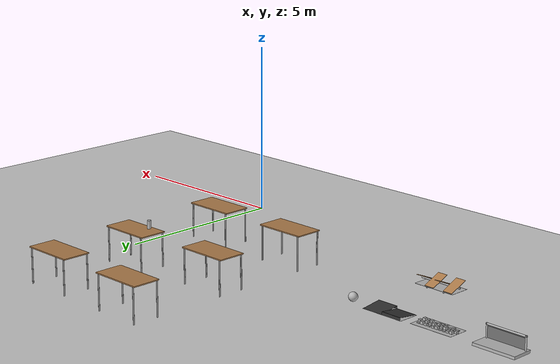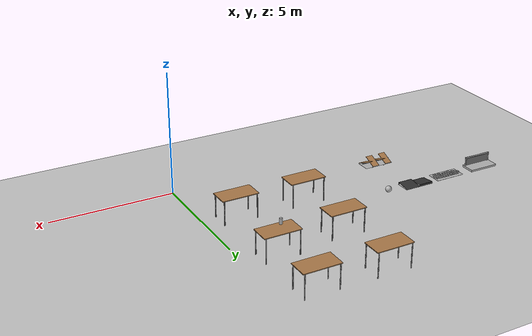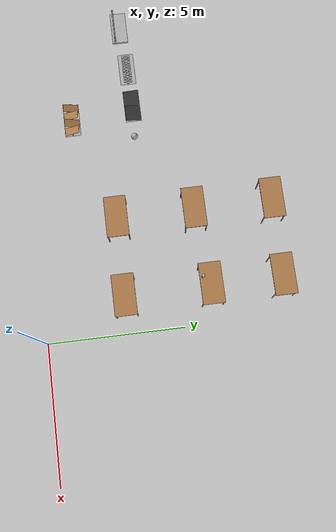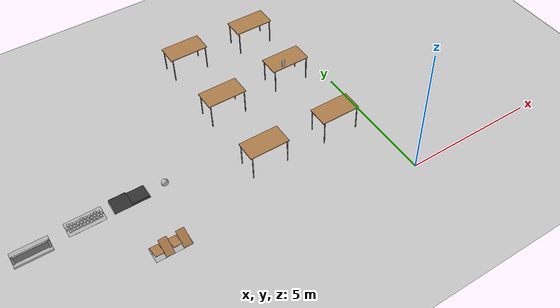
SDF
<sdf version="1.6">
 <world name="default">
  <model name="ground_plane">
   <static>1</static>
   <link name="link">
    <collision name="collision">
     <geometry><plane><normal>0 0 1</normal><size>100 100</size></plane></geometry>
     <surface>
      <contact><collide_bitmask>65535</collide_bitmask></contact>
      <friction><ode><mu>100</mu><mu2>50</mu2></ode></friction>
     </surface>
    </collision>
    <visual name="visual">
     <cast_shadows>0</cast_shadows>
     <geometry><plane><normal>0 0 1</normal><size>100 100</size></plane></geometry>
     <material>
      <script><uri>file://media/materials/scripts/gazebo.material</uri><name>Gazebo/Grey</name></script>
     </material>
    </visual>
   </link>
  </model>
  <model name="table_clone_0_clone_0_clone_clone_clone">
   <static>1</static>
   <link name="link">
    <collision name="surface">
     <pose>0 0 1 0 -0 0</pose>
     <geometry><box><size>1.5 0.8 0.03</size></box></geometry>
     <surface><friction><ode><mu>0.6</mu><mu2>0.6</mu2></ode></friction></surface>
    </collision>
    <visual name="visual1">
     <pose>0 0 1 0 -0 0</pose>
     <geometry><box><size>1.5 0.8 0.03</size></box></geometry>
     <material>
      <script><uri>file://media/materials/scripts/gazebo.material</uri><name>Gazebo/Wood</name></script>
     </material>
    </visual>
    <collision name="front_left_leg">
     <pose>0.68 0.38 0.5 0 -0 0</pose>
     <geometry><cylinder><radius>0.02</radius><length>1</length></cylinder></geometry>
    </collision>
    <visual name="front_left_leg">
     <pose>0.68 0.38 0.5 0 -0 0</pose>
     <geometry><cylinder><radius>0.02</radius><length>1</length></cylinder></geometry>
     <material>
      <script><uri>file://media/materials/scripts/gazebo.material</uri><name>Gazebo/Grey</name></script>
     </material>
    </visual>
    <collision name="front_right_leg">
     <pose>0.68 -0.38 0.5 0 -0 0</pose>
     <geometry><cylinder><radius>0.02</radius><length>1</length></cylinder></geometry>
    </collision>
    <visual name="front_right_leg">
     <pose>0.68 -0.38 0.5 0 -0 0</pose>
     <geometry><cylinder><radius>0.02</radius><length>1</length></cylinder></geometry>
     <material>
      <script><uri>file://media/materials/scripts/gazebo.material</uri><name>Gazebo/Grey</name></script>
     </material>
    </visual>
    <collision name="back_right_leg">
     <pose>-0.68 -0.38 0.5 0 -0 0</pose>
     <geometry><cylinder><radius>0.02</radius><length>1</length></cylinder></geometry>
    </collision>
    <visual name="back_right_leg">
     <pose>-0.68 -0.38 0.5 0 -0 0</pose>
     <geometry><cylinder><radius>0.02</radius><length>1</length></cylinder></geometry>
     <material>
      <script><uri>file://media/materials/scripts/gazebo.material</uri><name>Gazebo/Grey</name></script>
     </material>
    </visual>
    <collision name="back_left_leg">
     <pose>-0.68 0.38 0.5 0 -0 0</pose>
     <geometry><cylinder><radius>0.02</radius><length>1</length></cylinder></geometry>
    </collision>
    <visual name="back_left_leg">
     <pose>-0.68 0.38 0.5 0 -0 0</pose>
     <geometry><cylinder><radius>0.02</radius><length>1</length></cylinder></geometry>
     <material>
      <script><uri>file://media/materials/scripts/gazebo.material</uri><name>Gazebo/Grey</name></script>
     </material>
    </visual>
   </link>
   <pose>-4.19448 8.69629 0 0 -0 0</pose>
  </model>
  <model name="table_clone_0_clone_0_clone_clone_clone_clone">
   <static>1</static>
   <link name="link">
    <collision name="surface">
     <pose>0 0 1 0 -0 0</pose>
     <geometry><box><size>1.5 0.8 0.03</size></box></geometry>
     <surface><friction><ode><mu>0.6</mu><mu2>0.6</mu2></ode></friction></surface>
    </collision>
    <visual name="visual1">
     <pose>0 0 1 0 -0 0</pose>
     <geometry><box><size>1.5 0.8 0.03</size></box></geometry>
     <material>
      <script><uri>file://media/materials/scripts/gazebo.material</uri><name>Gazebo/Wood</name></script>
     </material>
    </visual>
    <collision name="front_left_leg">
     <pose>0.68 0.38 0.5 0 -0 0</pose>
     <geometry><cylinder><radius>0.02</radius><length>1</length></cylinder></geometry>
    </collision>
    <visual name="front_left_leg">
     <pose>0.68 0.38 0.5 0 -0 0</pose>
     <geometry><cylinder><radius>0.02</radius><length>1</length></cylinder></geometry>
     <material>
      <script><uri>file://media/materials/scripts/gazebo.material</uri><name>Gazebo/Grey</name></script>
     </material>
    </visual>
    <collision name="front_right_leg">
     <pose>0.68 -0.38 0.5 0 -0 0</pose>
     <geometry><cylinder><radius>0.02</radius><length>1</length></cylinder></geometry>
    </collision>
    <visual name="front_right_leg">
     <pose>0.68 -0.38 0.5 0 -0 0</pose>
     <geometry><cylinder><radius>0.02</radius><length>1</length></cylinder></geometry>
     <material>
      <script><uri>file://media/materials/scripts/gazebo.material</uri><name>Gazebo/Grey</name></script>
     </material>
    </visual>
    <collision name="back_right_leg">
     <pose>-0.68 -0.38 0.5 0 -0 0</pose>
     <geometry><cylinder><radius>0.02</radius><length>1</length></cylinder></geometry>
    </collision>
    <visual name="back_right_leg">
     <pose>-0.68 -0.38 0.5 0 -0 0</pose>
     <geometry><cylinder><radius>0.02</radius><length>1</length></cylinder></geometry>
     <material>
      <script><uri>file://media/materials/scripts/gazebo.material</uri><name>Gazebo/Grey</name></script>
     </material>
    </visual>
    <collision name="back_left_leg">
     <pose>-0.68 0.38 0.5 0 -0 0</pose>
     <geometry><cylinder><radius>0.02</radius><length>1</length></cylinder></geometry>
    </collision>
    <visual name="back_left_leg">
     <pose>-0.68 0.38 0.5 0 -0 0</pose>
     <geometry><cylinder><radius>0.02</radius><length>1</length></cylinder></geometry>
     <material>
      <script><uri>file://media/materials/scripts/gazebo.material</uri><name>Gazebo/Grey</name></script>
     </material>
    </visual>
   </link>
   <pose>-4.18086 5.82665 0 0 -0 0</pose>
  </model>
  <model name="table_clone_0_clone_0_clone_clone_clone_clone_clone">
   <static>1</static>
   <link name="link">
    <collision name="surface">
     <pose>0 0 1 0 -0 0</pose>
     <geometry><box><size>1.5 0.8 0.03</size></box></geometry>
     <surface><friction><ode><mu>0.6</mu><mu2>0.6</mu2></ode></friction></surface>
    </collision>
    <visual name="visual1">
     <pose>0 0 1 0 -0 0</pose>
     <geometry><box><size>1.5 0.8 0.03</size></box></geometry>
     <material>
      <script><uri>file://media/materials/scripts/gazebo.material</uri><name>Gazebo/Wood</name></script>
     </material>
    </visual>
    <collision name="front_left_leg">
     <pose>0.68 0.38 0.5 0 -0 0</pose>
     <geometry><cylinder><radius>0.02</radius><length>1</length></cylinder></geometry>
    </collision>
    <visual name="front_left_leg">
     <pose>0.68 0.38 0.5 0 -0 0</pose>
     <geometry><cylinder><radius>0.02</radius><length>1</length></cylinder></geometry>
     <material>
      <script><uri>file://media/materials/scripts/gazebo.material</uri><name>Gazebo/Grey</name></script>
     </material>
    </visual>
    <collision name="front_right_leg">
     <pose>0.68 -0.38 0.5 0 -0 0</pose>
     <geometry><cylinder><radius>0.02</radius><length>1</length></cylinder></geometry>
    </collision>
    <visual name="front_right_leg">
     <pose>0.68 -0.38 0.5 0 -0 0</pose>
     <geometry><cylinder><radius>0.02</radius><length>1</length></cylinder></geometry>
     <material>
      <script><uri>file://media/materials/scripts/gazebo.material</uri><name>Gazebo/Grey</name></script>
     </material>
    </visual>
    <collision name="back_right_leg">
     <pose>-0.68 -0.38 0.5 0 -0 0</pose>
     <geometry><cylinder><radius>0.02</radius><length>1</length></cylinder></geometry>
    </collision>
    <visual name="back_right_leg">
     <pose>-0.68 -0.38 0.5 0 -0 0</pose>
     <geometry><cylinder><radius>0.02</radius><length>1</length></cylinder></geometry>
     <material>
      <script><uri>file://media/materials/scripts/gazebo.material</uri><name>Gazebo/Grey</name></script>
     </material>
    </visual>
    <collision name="back_left_leg">
     <pose>-0.68 0.38 0.5 0 -0 0</pose>
     <geometry><cylinder><radius>0.02</radius><length>1</length></cylinder></geometry>
    </collision>
    <visual name="back_left_leg">
     <pose>-0.68 0.38 0.5 0 -0 0</pose>
     <geometry><cylinder><radius>0.02</radius><length>1</length></cylinder></geometry>
     <material>
      <script><uri>file://media/materials/scripts/gazebo.material</uri><name>Gazebo/Grey</name></script>
     </material>
    </visual>
   </link>
   <pose>-4.184 2.99357 0 0 -0 0</pose>
  </model>
  <model name="table_clone_0_clone_0_clone_clone_clone_clone_clone_3">
   <static>1</static>
   <link name="link">
    <collision name="surface">
     <pose>0 0 1 0 -0 0</pose>
     <geometry><box><size>1.5 0.8 0.03</size></box></geometry>
     <surface><friction><ode><mu>0.6</mu><mu2>0.6</mu2></ode></friction></surface>
    </collision>
    <visual name="visual1">
     <pose>0 0 1 0 -0 0</pose>
     <geometry><box><size>1.5 0.8 0.03</size></box></geometry>
     <material>
      <script><uri>file://media/materials/scripts/gazebo.material</uri><name>Gazebo/Wood</name></script>
     </material>
    </visual>
    <collision name="front_left_leg">
     <pose>0.68 0.38 0.5 0 -0 0</pose>
     <geometry><cylinder><radius>0.02</radius><length>1</length></cylinder></geometry>
    </collision>
    <visual name="front_left_leg">
     <pose>0.68 0.38 0.5 0 -0 0</pose>
     <geometry><cylinder><radius>0.02</radius><length>1</length></cylinder></geometry>
     <material>
      <script><uri>file://media/materials/scripts/gazebo.material</uri><name>Gazebo/Grey</name></script>
     </material>
    </visual>
    <collision name="front_right_leg">
     <pose>0.68 -0.38 0.5 0 -0 0</pose>
     <geometry><cylinder><radius>0.02</radius><length>1</length></cylinder></geometry>
    </collision>
    <visual name="front_right_leg">
     <pose>0.68 -0.38 0.5 0 -0 0</pose>
     <geometry><cylinder><radius>0.02</radius><length>1</length></cylinder></geometry>
     <material>
      <script><uri>file://media/materials/scripts/gazebo.material</uri><name>Gazebo/Grey</name></script>
     </material>
    </visual>
    <collision name="back_right_leg">
     <pose>-0.68 -0.38 0.5 0 -0 0</pose>
     <geometry><cylinder><radius>0.02</radius><length>1</length></cylinder></geometry>
    </collision>
    <visual name="back_right_leg">
     <pose>-0.68 -0.38 0.5 0 -0 0</pose>
     <geometry><cylinder><radius>0.02</radius><length>1</length></cylinder></geometry>
     <material>
      <script><uri>file://media/materials/scripts/gazebo.material</uri><name>Gazebo/Grey</name></script>
     </material>
    </visual>
    <collision name="back_left_leg">
     <pose>-0.68 0.38 0.5 0 -0 0</pose>
     <geometry><cylinder><radius>0.02</radius><length>1</length></cylinder></geometry>
    </collision>
    <visual name="back_left_leg">
     <pose>-0.68 0.38 0.5 0 -0 0</pose>
     <geometry><cylinder><radius>0.02</radius><length>1</length></cylinder></geometry>
     <material>
      <script><uri>file://media/materials/scripts/gazebo.material</uri><name>Gazebo/Grey</name></script>
     </material>
    </visual>
   </link>
   <pose>-1.34747 6.0871 0 0 -0 0</pose>
  </model>
  <model name="table_clone_0_clone_0_clone_clone_clone_clone_clone_3_clone">
   <static>1</static>
   <link name="link">
    <collision name="surface">
     <pose>0 0 1 0 -0 0</pose>
     <geometry><box><size>1.5 0.8 0.03</size></box></geometry>
     <surface><friction><ode><mu>0.6</mu><mu2>0.6</mu2></ode></friction></surface>
    </collision>
    <visual name="visual1">
     <pose>0 0 1 0 -0 0</pose>
     <geometry><box><size>1.5 0.8 0.03</size></box></geometry>
     <material>
      <script><uri>file://media/materials/scripts/gazebo.material</uri><name>Gazebo/Wood</name></script>
     </material>
    </visual>
    <collision name="front_left_leg">
     <pose>0.68 0.38 0.5 0 -0 0</pose>
     <geometry><cylinder><radius>0.02</radius><length>1</length></cylinder></geometry>
    </collision>
    <visual name="front_left_leg">
     <pose>0.68 0.38 0.5 0 -0 0</pose>
     <geometry><cylinder><radius>0.02</radius><length>1</length></cylinder></geometry>
     <material>
      <script><uri>file://media/materials/scripts/gazebo.material</uri><name>Gazebo/Grey</name></script>
     </material>
    </visual>
    <collision name="front_right_leg">
     <pose>0.68 -0.38 0.5 0 -0 0</pose>
     <geometry><cylinder><radius>0.02</radius><length>1</length></cylinder></geometry>
    </collision>
    <visual name="front_right_leg">
     <pose>0.68 -0.38 0.5 0 -0 0</pose>
     <geometry><cylinder><radius>0.02</radius><length>1</length></cylinder></geometry>
     <material>
      <script><uri>file://media/materials/scripts/gazebo.material</uri><name>Gazebo/Grey</name></script>
     </material>
    </visual>
    <collision name="back_right_leg">
     <pose>-0.68 -0.38 0.5 0 -0 0</pose>
     <geometry><cylinder><radius>0.02</radius><length>1</length></cylinder></geometry>
    </collision>
    <visual name="back_right_leg">
     <pose>-0.68 -0.38 0.5 0 -0 0</pose>
     <geometry><cylinder><radius>0.02</radius><length>1</length></cylinder></geometry>
     <material>
      <script><uri>file://media/materials/scripts/gazebo.material</uri><name>Gazebo/Grey</name></script>
     </material>
    </visual>
    <collision name="back_left_leg">
     <pose>-0.68 0.38 0.5 0 -0 0</pose>
     <geometry><cylinder><radius>0.02</radius><length>1</length></cylinder></geometry>
    </collision>
    <visual name="back_left_leg">
     <pose>-0.68 0.38 0.5 0 -0 0</pose>
     <geometry><cylinder><radius>0.02</radius><length>1</length></cylinder></geometry>
     <material>
      <script><uri>file://media/materials/scripts/gazebo.material</uri><name>Gazebo/Grey</name></script>
     </material>
    </visual>
   </link>
   <pose>-1.35639 8.6653 0 0 -0 0</pose>
  </model>
  <model name="table_clone_0_clone_0_clone_clone_clone_clone_clone_3_clone_0">
   <static>1</static>
   <link name="link">
    <collision name="surface">
     <pose>0 0 1 0 -0 0</pose>
     <geometry><box><size>1.5 0.8 0.03</size></box></geometry>
     <surface><friction><ode><mu>0.6</mu><mu2>0.6</mu2></ode></friction></surface>
    </collision>
    <visual name="visual1">
     <pose>0 0 1 0 -0 0</pose>
     <geometry><box><size>1.5 0.8 0.03</size></box></geometry>
     <material>
      <script><uri>file://media/materials/scripts/gazebo.material</uri><name>Gazebo/Wood</name></script>
     </material>
    </visual>
    <collision name="front_left_leg">
     <pose>0.68 0.38 0.5 0 -0 0</pose>
     <geometry><cylinder><radius>0.02</radius><length>1</length></cylinder></geometry>
    </collision>
    <visual name="front_left_leg">
     <pose>0.68 0.38 0.5 0 -0 0</pose>
     <geometry><cylinder><radius>0.02</radius><length>1</length></cylinder></geometry>
     <material>
      <script><uri>file://media/materials/scripts/gazebo.material</uri><name>Gazebo/Grey</name></script>
     </material>
    </visual>
    <collision name="front_right_leg">
     <pose>0.68 -0.38 0.5 0 -0 0</pose>
     <geometry><cylinder><radius>0.02</radius><length>1</length></cylinder></geometry>
    </collision>
    <visual name="front_right_leg">
     <pose>0.68 -0.38 0.5 0 -0 0</pose>
     <geometry><cylinder><radius>0.02</radius><length>1</length></cylinder></geometry>
     <material>
      <script><uri>file://media/materials/scripts/gazebo.material</uri><name>Gazebo/Grey</name></script>
     </material>
    </visual>
    <collision name="back_right_leg">
     <pose>-0.68 -0.38 0.5 0 -0 0</pose>
     <geometry><cylinder><radius>0.02</radius><length>1</length></cylinder></geometry>
    </collision>
    <visual name="back_right_leg">
     <pose>-0.68 -0.38 0.5 0 -0 0</pose>
     <geometry><cylinder><radius>0.02</radius><length>1</length></cylinder></geometry>
     <material>
      <script><uri>file://media/materials/scripts/gazebo.material</uri><name>Gazebo/Grey</name></script>
     </material>
    </visual>
    <collision name="back_left_leg">
     <pose>-0.68 0.38 0.5 0 -0 0</pose>
     <geometry><cylinder><radius>0.02</radius><length>1</length></cylinder></geometry>
    </collision>
    <visual name="back_left_leg">
     <pose>-0.68 0.38 0.5 0 -0 0</pose>
     <geometry><cylinder><radius>0.02</radius><length>1</length></cylinder></geometry>
     <material>
      <script><uri>file://media/materials/scripts/gazebo.material</uri><name>Gazebo/Grey</name></script>
     </material>
    </visual>
   </link>
   <pose>-1.30838 2.9678 0 0 -0 0</pose>
  </model>
  <model name="beer_0">
   <link name="link">
    <pose>0 0 0.115 0 -0 0</pose>
    <inertial>
     <mass>0.39</mass>
     <inertia><ixx>0.00058</ixx><ixy>0</ixy><ixz>0</ixz><iyy>0.00058</iyy><iyz>0</iyz><izz>0.00019</izz></inertia>
    </inertial>
    <collision name="collision">
     <geometry><cylinder><radius>0.055</radius><length>0.23</length></cylinder></geometry>
    </collision>
    <visual name="visual">
     <geometry><cylinder><radius>0.055</radius><length>0.23</length></cylinder></geometry>
     <material>
      <script>
       <uri>model://beer/materials/scripts</uri>
       <uri>model://beer/materials/textures</uri>
       <name>Beer/Diffuse</name>
      </script>
     </material>
    </visual>
   </link>
   <pose>-1.60593 5.8146 1.01499 8e-06 4e-05 -4.1e-05</pose>
  </model>
  <model name="frc2016_ramparts">
   <static>1</static>
   <link name="link">
    <visual name="platform">
     <pose>0 0 0.06967 0 -0 0</pose>
     <geometry><box><size>1.27 0.5969 0.003175</size></box></geometry>
    </visual>
    <collision name="platform">
     <pose>0 0 0.06967 0 -0 0</pose>
     <geometry><box><size>1.27 0.5969 0.003175</size></box></geometry>
    </collision>
    <visual name="ramp1">
     <pose>0.30472 0.00588 0.1109 -0.13 0 0</pose>
     <geometry><box><size>0.60957 0.588891 0.00462</size></box></geometry>
     <material><ambient>0.2 0.2 0.2 1</ambient><diffuse>0.2 0.2 0.2 1</diffuse></material>
    </visual>
    <collision name="ramp1">
     <pose>0.30472 0.00588 0.1109 -0.13 0 0</pose>
     <geometry><box><size>0.60957 0.588891 0.00462</size></box></geometry>
    </collision>
    <visual name="up1">
     <pose>0.30472 -0.28806 0.11072 0 -0 0</pose>
     <geometry><box><size>0.60957 0.00462 0.07872</size></box></geometry>
     <material><ambient>0.2 0.2 0.2 1</ambient><diffuse>0.2 0.2 0.2 1</diffuse></material>
    </visual>
    <collision name="up1">
     <pose>0.30472 -0.28806 0.11072 0 -0 0</pose>
     <geometry><box><size>0.60957 0.00462 0.07872</size></box></geometry>
    </collision>
    <visual name="ramp2">
     <pose>-0.30472 -0.00619 0.1109 0.13 -0 0</pose>
     <geometry><box><size>0.60957 0.588891 0.00462</size></box></geometry>
     <material><ambient>0.2 0.2 0.2 1</ambient><diffuse>0.2 0.2 0.2 1</diffuse></material>
    </visual>
    <collision name="ramp2">
     <pose>-0.30472 -0.00619 0.1109 0.13 -0 0</pose>
     <geometry><box><size>0.60957 0.588891 0.00462</size></box></geometry>
    </collision>
    <visual name="up2">
     <pose>-0.30472 0.28806 0.11072 0 -0 0</pose>
     <geometry><box><size>0.60957 0.00462 0.07872</size></box></geometry>
     <material><ambient>0.2 0.2 0.2 1</ambient><diffuse>0.2 0.2 0.2 1</diffuse></material>
    </visual>
    <collision name="up2">
     <pose>-0.30472 0.28806 0.11072 0 -0 0</pose>
     <geometry><box><size>0.60957 0.00462 0.07872</size></box></geometry>
    </collision>
   </link>
   <pose>-8.75566 4.03061 0 0 -0 0</pose>
  </model>
  <model name="frc2016_roughterrain">
   <static>1</static>
   <link name="link">
    <visual name="platform">
     <pose>0 0 0.08269 0 -0 0</pose>
     <geometry><box><size>1.27 0.5969 0.003175</size></box></geometry>
    </visual>
    <collision name="platform">
     <pose>0 0 0.08269 0 -0 0</pose>
     <geometry><box><size>1.27 0.5969 0.003175</size></box></geometry>
    </collision>
    <visual name="row1_block1_sm">
     <pose>0.51435 0.1143 0.09698 0 -0 0</pose>
     <geometry><box><size>0.0762 0.0762 0.0254</size></box></geometry>
    </visual>
    <collision name="row1_block1_sm">
     <pose>0.51435 0.1143 0.09698 0 -0 0</pose>
     <geometry><box><size>0.0762 0.0762 0.0254</size></box></geometry>
    </collision>
    <visual name="row1_block2_lg">
     <pose>0.40005 0.1143 0.12238 0 -0 0</pose>
     <geometry><box><size>0.0762 0.0762 0.0762</size></box></geometry>
    </visual>
    <collision name="row1_block2_lg">
     <pose>0.40005 0.1143 0.12238 0 -0 0</pose>
     <geometry><box><size>0.0762 0.0762 0.0762</size></box></geometry>
    </collision>
    <visual name="row1_block3_md">
     <pose>0.28575 0.1143 0.10968 0 -0 0</pose>
     <geometry><box><size>0.0762 0.0762 0.0508</size></box></geometry>
    </visual>
    <collision name="row1_block3_md">
     <pose>0.28575 0.1143 0.10968 0 -0 0</pose>
     <geometry><box><size>0.0762 0.0762 0.0508</size></box></geometry>
    </collision>
    <visual name="row1_block4_sm">
     <pose>0.17145 0.1143 0.09698 0 -0 0</pose>
     <geometry><box><size>0.0762 0.0762 0.0254</size></box></geometry>
    </visual>
    <collision name="row1_block4_sm">
     <pose>0.17145 0.1143 0.09698 0 -0 0</pose>
     <geometry><box><size>0.0762 0.0762 0.0254</size></box></geometry>
    </collision>
    <visual name="row1_block5_md">
     <pose>0.05715 0.1143 0.10968 0 -0 0</pose>
     <geometry><box><size>0.0762 0.0762 0.0508</size></box></geometry>
    </visual>
    <collision name="row1_block5_md">
     <pose>0.05715 0.1143 0.10968 0 -0 0</pose>
     <geometry><box><size>0.0762 0.0762 0.0508</size></box></geometry>
    </collision>
    <visual name="row1_block6_lg">
     <pose>-0.05715 0.1143 0.12238 0 -0 0</pose>
     <geometry><box><size>0.0762 0.0762 0.0762</size></box></geometry>
    </visual>
    <collision name="row1_block6_lg">
     <pose>-0.05715 0.1143 0.12238 0 -0 0</pose>
     <geometry><box><size>0.0762 0.0762 0.0762</size></box></geometry>
    </collision>
    <visual name="row1_block7_sm">
     <pose>-0.17145 0.1143 0.09698 0 -0 0</pose>
     <geometry><box><size>0.0762 0.0762 0.0254</size></box></geometry>
    </visual>
    <collision name="row1_block7_sm">
     <pose>-0.17145 0.1143 0.09698 0 -0 0</pose>
     <geometry><box><size>0.0762 0.0762 0.0254</size></box></geometry>
    </collision>
    <visual name="row1_block8_sm">
     <pose>-0.28575 0.1143 0.09698 0 -0 0</pose>
     <geometry><box><size>0.0762 0.0762 0.0254</size></box></geometry>
    </visual>
    <collision name="row1_block8_sm">
     <pose>-0.28575 0.1143 0.09698 0 -0 0</pose>
     <geometry><box><size>0.0762 0.0762 0.0254</size></box></geometry>
    </collision>
    <visual name="row1_block9_md">
     <pose>-0.40005 0.1143 0.10968 0 -0 0</pose>
     <geometry><box><size>0.0762 0.0762 0.0508</size></box></geometry>
    </visual>
    <collision name="row1_block9_md">
     <pose>-0.40005 0.1143 0.10968 0 -0 0</pose>
     <geometry><box><size>0.0762 0.0762 0.0508</size></box></geometry>
    </collision>
    <visual name="row1_block10_lg">
     <pose>-0.51435 0.1143 0.12238 0 -0 0</pose>
     <geometry><box><size>0.0762 0.0762 0.0762</size></box></geometry>
    </visual>
    <collision name="row1_block10_lg">
     <pose>-0.51435 0.1143 0.12238 0 -0 0</pose>
     <geometry><box><size>0.0762 0.0762 0.0762</size></box></geometry>
    </collision>
    <visual name="row2_block1_md">
     <pose>0.5715 0 0.10968 0 -0 0</pose>
     <geometry><box><size>0.0762 0.0762 0.0508</size></box></geometry>
    </visual>
    <collision name="row2_block1_md">
     <pose>0.5715 0 0.10968 0 -0 0</pose>
     <geometry><box><size>0.0762 0.0762 0.0508</size></box></geometry>
    </collision>
    <visual name="row2_block2_sm">
     <pose>0.4572 0 0.09698 0 -0 0</pose>
     <geometry><box><size>0.0762 0.0762 0.0254</size></box></geometry>
    </visual>
    <collision name="row2_block2_sm">
     <pose>0.4572 0 0.09698 0 -0 0</pose>
     <geometry><box><size>0.0762 0.0762 0.0254</size></box></geometry>
    </collision>
    <visual name="row2_block3_lg">
     <pose>0.3429 0 0.12238 0 -0 0</pose>
     <geometry><box><size>0.0762 0.0762 0.0762</size></box></geometry>
    </visual>
    <collision name="row2_block3_lg">
     <pose>0.3429 0 0.12238 0 -0 0</pose>
     <geometry><box><size>0.0762 0.0762 0.0762</size></box></geometry>
    </collision>
    <visual name="row2_block4_md">
     <pose>0.2286 0 0.10968 0 -0 0</pose>
     <geometry><box><size>0.0762 0.0762 0.0508</size></box></geometry>
    </visual>
    <collision name="row2_block4_md">
     <pose>0.2286 0 0.10968 0 -0 0</pose>
     <geometry><box><size>0.0762 0.0762 0.0508</size></box></geometry>
    </collision>
    <visual name="row2_block5_lg">
     <pose>0.1143 0 0.12238 0 -0 0</pose>
     <geometry><box><size>0.0762 0.0762 0.0762</size></box></geometry>
    </visual>
    <collision name="row2_block5_lg">
     <pose>0.1143 0 0.12238 0 -0 0</pose>
     <geometry><box><size>0.0762 0.0762 0.0762</size></box></geometry>
    </collision>
    <visual name="row2_block6_sm">
     <pose>0 0 0.09698 0 -0 0</pose>
     <geometry><box><size>0.0762 0.0762 0.0254</size></box></geometry>
    </visual>
    <collision name="row2_block6_sm">
     <pose>0 0 0.09698 0 -0 0</pose>
     <geometry><box><size>0.0762 0.0762 0.0254</size></box></geometry>
    </collision>
    <visual name="row2_block7_md">
     <pose>-0.1143 0 0.10968 0 -0 0</pose>
     <geometry><box><size>0.0762 0.0762 0.0508</size></box></geometry>
    </visual>
    <collision name="row2_block7_md">
     <pose>-0.1143 0 0.10968 0 -0 0</pose>
     <geometry><box><size>0.0762 0.0762 0.0508</size></box></geometry>
    </collision>
    <visual name="row2_block8_lg">
     <pose>-0.2286 0 0.12238 0 -0 0</pose>
     <geometry><box><size>0.0762 0.0762 0.0762</size></box></geometry>
    </visual>
    <collision name="row2_block8_lg">
     <pose>-0.2286 0 0.12238 0 -0 0</pose>
     <geometry><box><size>0.0762 0.0762 0.0762</size></box></geometry>
    </collision>
    <visual name="row2_block9_sm">
     <pose>-0.3429 0 0.09698 0 -0 0</pose>
     <geometry><box><size>0.0762 0.0762 0.0254</size></box></geometry>
    </visual>
    <collision name="row2_block9_sm">
     <pose>-0.3429 0 0.09698 0 -0 0</pose>
     <geometry><box><size>0.0762 0.0762 0.0254</size></box></geometry>
    </collision>
    <visual name="row2_block10_lg">
     <pose>-0.4572 0 0.12238 0 -0 0</pose>
     <geometry><box><size>0.0762 0.0762 0.0762</size></box></geometry>
    </visual>
    <collision name="row2_block10_lg">
     <pose>-0.4572 0 0.12238 0 -0 0</pose>
     <geometry><box><size>0.0762 0.0762 0.0762</size></box></geometry>
    </collision>
    <visual name="row2_block11_md">
     <pose>-0.5715 0 0.10968 0 -0 0</pose>
     <geometry><box><size>0.0762 0.0762 0.0508</size></box></geometry>
    </visual>
    <collision name="row2_block11_md">
     <pose>-0.5715 0 0.10968 0 -0 0</pose>
     <geometry><box><size>0.0762 0.0762 0.0508</size></box></geometry>
    </collision>
    <visual name="row3_block1_lg">
     <pose>0.51435 -0.1143 0.12238 0 -0 0</pose>
     <geometry><box><size>0.0762 0.0762 0.0762</size></box></geometry>
    </visual>
    <collision name="row3_block1_lg">
     <pose>0.51435 -0.1143 0.12238 0 -0 0</pose>
     <geometry><box><size>0.0762 0.0762 0.0762</size></box></geometry>
    </collision>
    <visual name="row3_block2_md">
     <pose>0.40005 -0.1143 0.10968 0 -0 0</pose>
     <geometry><box><size>0.0762 0.0762 0.0508</size></box></geometry>
    </visual>
    <collision name="row3_block2_md">
     <pose>0.40005 -0.1143 0.10968 0 -0 0</pose>
     <geometry><box><size>0.0762 0.0762 0.0508</size></box></geometry>
    </collision>
    <visual name="row3_block3_lg">
     <pose>0.28575 -0.1143 0.12238 0 -0 0</pose>
     <geometry><box><size>0.0762 0.0762 0.0762</size></box></geometry>
    </visual>
    <collision name="row3_block3_lg">
     <pose>0.28575 -0.1143 0.12238 0 -0 0</pose>
     <geometry><box><size>0.0762 0.0762 0.0762</size></box></geometry>
    </collision>
    <visual name="row3_block4_sm">
     <pose>0.17145 -0.1143 0.09698 0 -0 0</pose>
     <geometry><box><size>0.0762 0.0762 0.0254</size></box></geometry>
    </visual>
    <collision name="row3_block4_sm">
     <pose>0.17145 -0.1143 0.09698 0 -0 0</pose>
     <geometry><box><size>0.0762 0.0762 0.0254</size></box></geometry>
    </collision>
    <visual name="row3_block5_md">
     <pose>0.05715 -0.1143 0.10968 0 -0 0</pose>
     <geometry><box><size>0.0762 0.0762 0.0508</size></box></geometry>
    </visual>
    <collision name="row3_block5_md">
     <pose>0.05715 -0.1143 0.10968 0 -0 0</pose>
     <geometry><box><size>0.0762 0.0762 0.0508</size></box></geometry>
    </collision>
    <visual name="row3_block6_md">
     <pose>-0.05715 -0.1143 0.10968 0 -0 0</pose>
     <geometry><box><size>0.0762 0.0762 0.0508</size></box></geometry>
    </visual>
    <collision name="row3_block6_md">
     <pose>-0.05715 -0.1143 0.10968 0 -0 0</pose>
     <geometry><box><size>0.0762 0.0762 0.0508</size></box></geometry>
    </collision>
    <visual name="row3_block7_lg">
     <pose>-0.17145 -0.1143 0.12238 0 -0 0</pose>
     <geometry><box><size>0.0762 0.0762 0.0762</size></box></geometry>
    </visual>
    <collision name="row3_block7_lg">
     <pose>-0.17145 -0.1143 0.12238 0 -0 0</pose>
     <geometry><box><size>0.0762 0.0762 0.0762</size></box></geometry>
    </collision>
    <visual name="row3_block8_sm">
     <pose>-0.28575 -0.1143 0.09698 0 -0 0</pose>
     <geometry><box><size>0.0762 0.0762 0.0254</size></box></geometry>
    </visual>
    <collision name="row3_block8_sm">
     <pose>-0.28575 -0.1143 0.09698 0 -0 0</pose>
     <geometry><box><size>0.0762 0.0762 0.0254</size></box></geometry>
    </collision>
    <visual name="row3_block9_md">
     <pose>-0.40005 -0.1143 0.10968 0 -0 0</pose>
     <geometry><box><size>0.0762 0.0762 0.0508</size></box></geometry>
    </visual>
    <collision name="row3_block9_md">
     <pose>-0.40005 -0.1143 0.10968 0 -0 0</pose>
     <geometry><box><size>0.0762 0.0762 0.0508</size></box></geometry>
    </collision>
    <visual name="row3_block10_sm">
     <pose>-0.51435 -0.1143 0.09698 0 -0 0</pose>
     <geometry><box><size>0.0762 0.0762 0.0254</size></box></geometry>
    </visual>
    <collision name="row3_block10_sm">
     <pose>-0.51435 -0.1143 0.09698 0 -0 0</pose>
     <geometry><box><size>0.0762 0.0762 0.0254</size></box></geometry>
    </collision>
   </link>
   <pose>-10.3036 3.99799 0 0 -0 0</pose>
  </model>
  <model name="frc2016_ball">
   <pose>-7.48392 3.99044 0.127 0 -0 0</pose>
   <link name="link">
    <inertial>
     <mass>0.213</mass>
     <inertia>
      <ixx>0.00322667</ixx>
      <ixy>0</ixy>
      <ixz>0</ixz>
      <iyy>0.00322667</iyy>
      <iyz>0</iyz>
      <izz>0.00322667</izz>
     </inertia>
    </inertial>
    <visual name="visual"><geometry><sphere><radius>0.127</radius></sphere></geometry></visual>
    <collision name="collision">
     <geometry><sphere><radius>0.127</radius></sphere></geometry>
     <surface>
      <bounce><restitution_coefficient>0.15937</restitution_coefficient><threshold>0</threshold></bounce>
      <contact><ode><max_vel>100</max_vel><min_depth>0.001</min_depth></ode></contact>
     </surface>
    </collision>
   </link>
  </model>
  <model name="frc2016_chevaldefrise">
   <link name="base">
    <inertial>
     <mass>10</mass>
     <pose>0 0 0.15672 0 -0 0</pose>
     <inertia><ixx>0.380221</ixx><ixy>0</ixy><ixz>0</ixz><iyy>1.43365</iyy><iyz>0</iyz><izz>1.64745</izz></inertia>
    </inertial>
    <visual name="platform">
     <pose>0 0 0.06968 0 -0 0</pose>
     <geometry><box><size>1.27 0.5969 0.003175</size></box></geometry>
    </visual>
    <collision name="platform">
     <pose>0 0 0.06968 0 -0 0</pose>
     <geometry><box><size>1.27 0.5969 0.003175</size></box></geometry>
    </collision>
    <visual name="bar">
     <pose>0 0 0.16855 0 1.5707 0</pose>
     <geometry><cylinder><radius>0.02108</radius><length>1.273</length></cylinder></geometry>
    </visual>
    <collision name="bar">
     <pose>0 0 0.16855 0 1.5707 0</pose>
     <geometry><cylinder><radius>0.02108</radius><length>1.27</length></cylinder></geometry>
    </collision>
    <visual name="castor1">
     <pose>-0.45653 -0.16581 0.03175 0 -0 0</pose>
     <geometry><sphere><radius>0.03175</radius></sphere></geometry>
    </visual>
    <collision name="castor1">
     <pose>-0.45653 -0.16581 0.03175 0 -0 0</pose>
     <geometry><sphere><radius>0.03175</radius></sphere></geometry>
    </collision>
    <visual name="castor2">
     <pose>-0.27855 0.21408 0.03175 0 -0 0</pose>
     <geometry><sphere><radius>0.03175</radius></sphere></geometry>
    </visual>
    <collision name="castor2">
     <pose>-0.27855 0.21408 0.03175 0 -0 0</pose>
     <geometry><sphere><radius>0.03175</radius></sphere></geometry>
    </collision>
    <visual name="castor3">
     <pose>0.28191 0.21419 0.03175 0 -0 0</pose>
     <geometry><sphere><radius>0.03175</radius></sphere></geometry>
    </visual>
    <collision name="castor3">
     <pose>0.28191 0.21419 0.03175 0 -0 0</pose>
     <geometry><sphere><radius>0.03175</radius></sphere></geometry>
    </collision>
    <visual name="castor4">
     <pose>0.45965 -0.16602 0.03175 0 -0 0</pose>
     <geometry><sphere><radius>0.03175</radius></sphere></geometry>
    </visual>
    <collision name="castor4">
     <pose>0.45965 -0.16602 0.03175 0 -0 0</pose>
     <geometry><sphere><radius>0.03175</radius></sphere></geometry>
    </collision>
   </link>
   <link name="slant1">
    <pose>-0.4572 0.01307 0.1997 -0.39732 0 0</pose>
    <inertial>
     <pose>0 0.1 0 0 -0 0</pose>
     <mass>2</mass>
     <inertia>
      <ixx>0.0606857</ixx>
      <ixy>0</ixy>
      <ixz>0</ixz>
      <iyy>0.0148723</iyy>
      <iyz>0</iyz>
      <izz>0.0755042</izz>
     </inertia>
    </inertial>
    <visual name="visual">
     <geometry><box><size>0.29845 0.593285 0.0127</size></box></geometry>
     <material><script><name>Gazebo/WoodFloor</name><uri>__default__</uri></script></material>
    </visual>
    <collision name="collision"><geometry><box><size>0.29845 0.593285 0.0127</size></box></geometry></collision>
   </link>
   <link name="slant2">
    <pose>-0.1524 -0.01307 0.1997 0.39732 -0 0</pose>
    <inertial>
     <mass>2</mass>
     <pose>0 -0.1 0 0 -0 0</pose>
     <inertia>
      <ixx>0.0606857</ixx>
      <ixy>0</ixy>
      <ixz>0</ixz>
      <iyy>0.0148723</iyy>
      <iyz>0</iyz>
      <izz>0.0755042</izz>
     </inertia>
    </inertial>
    <visual name="visual">
     <geometry><box><size>0.29845 0.593285 0.0127</size></box></geometry>
     <material><script><name>Gazebo/WoodFloor</name><uri>__default__</uri></script></material>
    </visual>
    <collision name="collision"><geometry><box><size>0.29845 0.593285 0.0127</size></box></geometry></collision>
   </link>
   <link name="slant3">
    <pose>0.1524 0.01307 0.1997 -0.39732 0 0</pose>
    <inertial>
     <pose>0 0.1 0 0 -0 0</pose>
     <mass>2</mass>
     <inertia>
      <ixx>0.0606857</ixx>
      <ixy>0</ixy>
      <ixz>0</ixz>
      <iyy>0.0148723</iyy>
      <iyz>0</iyz>
      <izz>0.0755042</izz>
     </inertia>
    </inertial>
    <visual name="visual">
     <geometry><box><size>0.29845 0.593285 0.0127</size></box></geometry>
     <material><script><name>Gazebo/WoodFloor</name><uri>__default__</uri></script></material>
    </visual>
    <collision name="collision"><geometry><box><size>0.29845 0.593285 0.0127</size></box></geometry></collision>
   </link>
   <link name="slant4">
    <pose>0.4572 -0.01307 0.1997 0.39732 -0 0</pose>
    <inertial>
     <pose>0 -0.1 0 0 -0 0</pose>
     <mass>2</mass>
     <inertia>
      <ixx>0.0606857</ixx>
      <ixy>0</ixy>
      <ixz>0</ixz>
      <iyy>0.0148723</iyy>
      <iyz>0</iyz>
      <izz>0.0755042</izz>
     </inertia>
    </inertial>
    <visual name="visual">
     <geometry><box><size>0.29845 0.593285 0.0127</size></box></geometry>
     <material><script><name>Gazebo/WoodFloor</name><uri>__default__</uri></script></material>
    </visual>
    <collision name="collision"><geometry><box><size>0.29845 0.593285 0.0127</size></box></geometry></collision>
   </link>
   <joint name="slant1_joint" type="revolute">
    <parent>base</parent>
    <child>slant1</child>
    <axis>
     <xyz>1 0 0</xyz>
     <limit><lower>0</lower><upper>1.5707</upper></limit>
     <dynamics><spring_reference>0</spring_reference><spring_stiffness>0</spring_stiffness></dynamics>
    </axis>
   </joint>
   <joint name="slant2_joint" type="revolute">
    <parent>base</parent>
    <child>slant2</child>
    <axis>
     <xyz>1 0 0</xyz>
     <limit><lower>-1.5707</lower><upper>0</upper></limit>
     <dynamics><spring_reference>0</spring_reference><spring_stiffness>0</spring_stiffness></dynamics>
    </axis>
   </joint>
   <joint name="slant3_joint" type="revolute">
    <parent>base</parent>
    <child>slant3</child>
    <axis>
     <xyz>1 0 0</xyz>
     <limit><lower>0</lower><upper>1.5707</upper></limit>
     <dynamics><spring_reference>0</spring_reference><spring_stiffness>0</spring_stiffness></dynamics>
    </axis>
   </joint>
   <joint name="slant4_joint" type="revolute">
    <parent>base</parent>
    <child>slant4</child>
    <axis>
     <xyz>1 0 0</xyz>
     <limit><lower>-1.5707</lower><upper>0</upper></limit>
     <dynamics><spring_reference>0</spring_reference><spring_stiffness>0</spring_stiffness></dynamics>
    </axis>
   </joint>
   <pose>-8.43697 1.65582 -0 0 -0 0</pose>
  </model>
  <model name="frc2016_lowbar">
   <link name="base">
    <inertial>
     <mass>50</mass>
     <inertia>
      <ixx>0.035543</ixx>
      <ixy>0</ixy>
      <ixz>0</ixz>
      <iyy>0.134412</iyy>
      <iyz>0</iyz>
      <izz>0.165376</izz>
     </inertia>
    </inertial>
    <visual name="platform">
     <pose>0 0 0.039065 0 -0 0</pose>
     <geometry><box><size>1.26 0.5996 0.07813</size></box></geometry>
    </visual>
    <collision name="platform">
     <pose>0 0 0.039065 0 -0 0</pose>
     <geometry><box><size>1.27 0.6096 0.07813</size></box></geometry>
    </collision>
    <visual name="right_column">
     <pose>-0.57845 -0.18464 0.26863 0 -0 0</pose>
     <geometry><cylinder><radius>0.0254</radius><length>0.381</length></cylinder></geometry>
    </visual>
    <collision name="right_column">
     <pose>-0.57845 -0.18464 0.26863 0 -0 0</pose>
     <geometry><cylinder><radius>0.0254</radius><length>0.381</length></cylinder></geometry>
    </collision>
    <visual name="left_column">
     <pose>0.57845 -0.18464 0.26863 0 -0 0</pose>
     <geometry><cylinder><radius>0.0254</radius><length>0.381</length></cylinder></geometry>
    </visual>
    <collision name="left_column">
     <pose>0.57845 -0.18464 0.26863 0 -0 0</pose>
     <geometry><cylinder><radius>0.0254</radius><length>0.381</length></cylinder></geometry>
    </collision>
    <visual name="horizontal">
     <pose>0 -0.18464 0.43556 0 1.5707 0</pose>
     <geometry><cylinder><radius>0.0254</radius><length>1.2018</length></cylinder></geometry>
    </visual>
    <collision name="horizontal">
     <pose>0 -0.18464 0.43556 0 1.5707 0</pose>
     <geometry><cylinder><radius>0.0254</radius><length>1.2018</length></cylinder></geometry>
    </collision>
   </link>
   <link name="wall">
    <pose>0 -0.1778 0.24323 0 -0 0</pose>
    <inertial>
     <mass>1</mass>
     <inertia>
      <ixx>0.00774528</ixx>
      <ixy>0</ixy>
      <ixz>0</ixz>
      <iyy>0.116613</iyy>
      <iyz>0</iyz>
      <izz>0.108874</izz>
     </inertia>
    </inertial>
    <visual name="visual">
     <geometry><box><size>1.1176 0.00635 0.3</size></box></geometry>
     <material><ambient>0.46 0.46 0.46 1</ambient><diffuse>0.46 0.46 0.46 1</diffuse></material>
    </visual>
    <collision name="collision"><geometry><box><size>1.143 0.00635 0.3</size></box></geometry></collision>
   </link>
   <joint name="bar_joint" type="revolute">
    <pose>0 0 0.36378 0 -0 0</pose>
    <parent>base</parent>
    <child>wall</child>
    <axis>
     <xyz>1 0 0</xyz>
     <limit><lower>-1.5707</lower><upper>1.5707</upper></limit>
     <dynamics><spring_reference>0</spring_reference><spring_stiffness>0</spring_stiffness></dynamics>
    </axis>
   </joint>
   <pose>-12.1218 3.87672 -9e-06 -1.3e-05 2e-05 -0.003387</pose>
  </model>
 </world>
</sdf>
